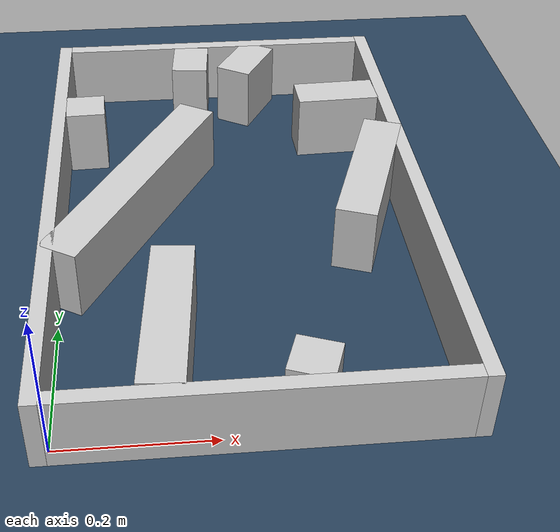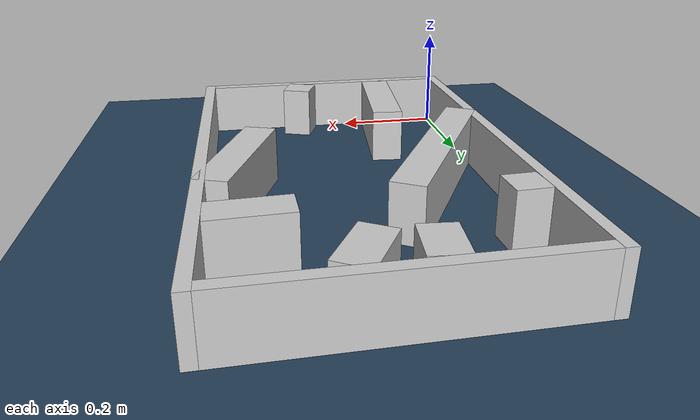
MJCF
<?xml version="1.0" ?>
<mujoco model="generated_real_template">
  <compiler angle="degree"/>
  <option timestep="0.002" integrator="implicitfast" iterations="100" cone="elliptic"/>
  <default>
    <geom density="1"/>
  </default>
  <asset>
    <texture builtin="gradient" height="3072" rgb1="0.3 0.5 0.7" rgb2="0 0 0" type="skybox" width="512"/>
    <texture builtin="checker" height="300" mark="edge" markrgb="0.8 0.8 0.8" name="groundplane" rgb1="0.2 0.3 0.4" rgb2="0.1 0.2 0.3" type="2d" width="300"/>
    <material name="groundplane" reflectance="0.2" texrepeat="5 5" texture="groundplane" texuniform="true"/>
  </asset>
  <worldbody>
    <light dir="0 0 -1" directional="true" pos="0 0 1.5"/>
    <geom name="floor" type="plane" condim="4" friction="0.5 0.005 0.001" material="groundplane" size="0 0 0.05"/>
    <body name="walls">
      <geom name="wall_boundary_left" type="box" condim="4" friction="1.0 0.005 0.0001" rgba="0.8 0.8 0.8 1" pos="-0.010000 0.387500 0.050000" euler="0 0 0.000000" size="0.010000 0.407500 0.050000"/>
      <geom name="wall_boundary_right" type="box" condim="4" friction="1.0 0.005 0.0001" rgba="0.8 0.8 0.8 1" pos="0.500000 0.387500 0.050000" euler="0 0 0.000000" size="0.010000 0.407500 0.050000"/>
      <geom name="wall_boundary_bottom" type="box" condim="4" friction="1.0 0.005 0.0001" rgba="0.8 0.8 0.8 1" pos="0.245000 -0.010000 0.050000" euler="0 0 0.000000" size="0.245000 0.010000 0.050000"/>
      <geom name="wall_boundary_top" type="box" condim="4" friction="1.0 0.005 0.0001" rgba="0.8 0.8 0.8 1" pos="0.245000 0.785000 0.050000" euler="0 0 0.000000" size="0.245000 0.010000 0.050000"/>
      <geom name="wall_inner_1_1" type="box" condim="4" friction="1.0 0.005 0.0001" rgba="0.8 0.8 0.8 1" pos="0.200341 0.735687 0.050000" euler="0 0 -95.351438" size="0.039485 0.028500 0.050000"/>
      <geom name="wall_inner_1_2" type="box" condim="4" friction="1.0 0.005 0.0001" rgba="0.8 0.8 0.8 1" pos="0.142572 0.118971 0.050000" euler="0 0 -95.351438" size="0.119492 0.028500 0.050000"/>
      <geom name="wall_inner_2_1" type="box" condim="4" friction="1.0 0.005 0.0001" rgba="0.8 0.8 0.8 1" pos="0.426976 0.609873 0.050000" euler="0 0 -177.973512" size="0.063064 0.028500 0.050000"/>
      <geom name="wall_inner_2_2" type="box" condim="4" friction="1.0 0.005 0.0001" rgba="0.8 0.8 0.8 1" pos="0.029386 0.595805 0.050000" euler="0 0 -177.973512" size="0.029405 0.028500 0.050000"/>
      <geom name="wall_inner_3_1" type="box" condim="4" friction="1.0 0.005 0.0001" rgba="0.8 0.8 0.8 1" pos="0.103538 0.407140 0.050000" euler="0 0 59.634731" size="0.195735 0.028500 0.050000"/>
      <geom name="wall_inner_3_2" type="box" condim="4" friction="1.0 0.005 0.0001" rgba="0.8 0.8 0.8 1" pos="0.293795 0.731877 0.050000" euler="0 0 59.634731" size="0.049979 0.028500 0.050000"/>
      <geom name="wall_inner_4_1" type="box" condim="4" friction="1.0 0.005 0.0001" rgba="0.8 0.8 0.8 1" pos="0.306185 0.027103 0.050000" euler="0 0 69.954630" size="0.028851 0.028500 0.050000"/>
      <geom name="wall_inner_4_2" type="box" condim="4" friction="1.0 0.005 0.0001" rgba="0.8 0.8 0.8 1" pos="0.442167 0.399793 0.050000" euler="0 0 69.954630" size="0.119785 0.028500 0.050000"/>
    </body>
  </worldbody>
</mujoco>
